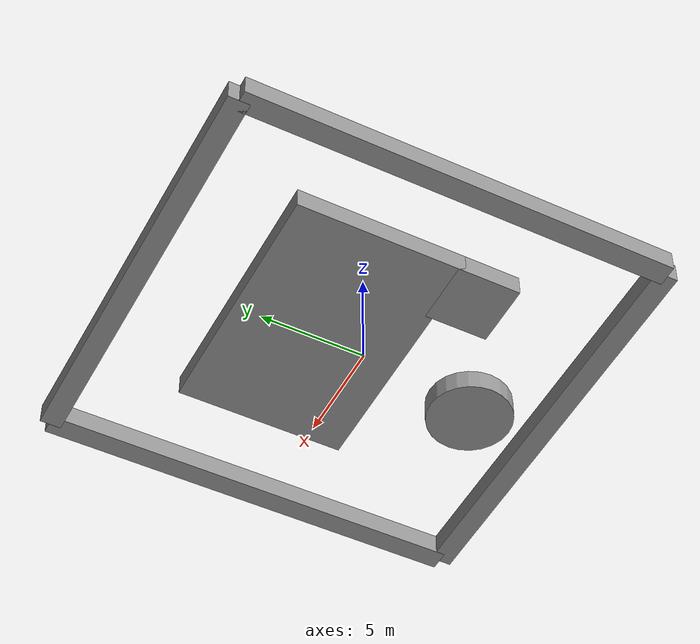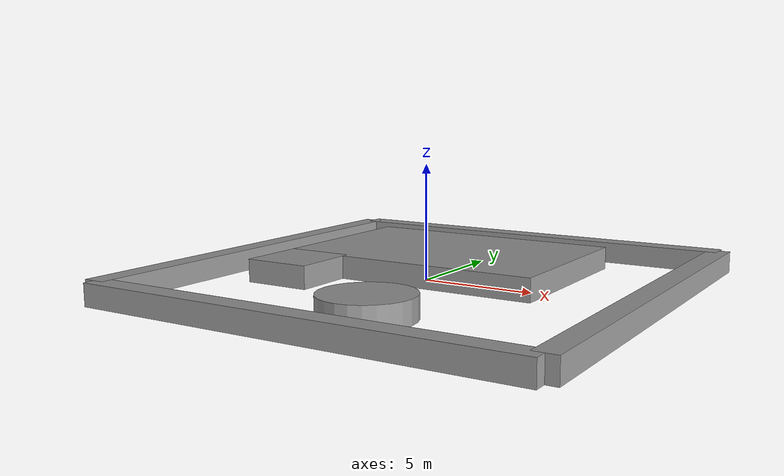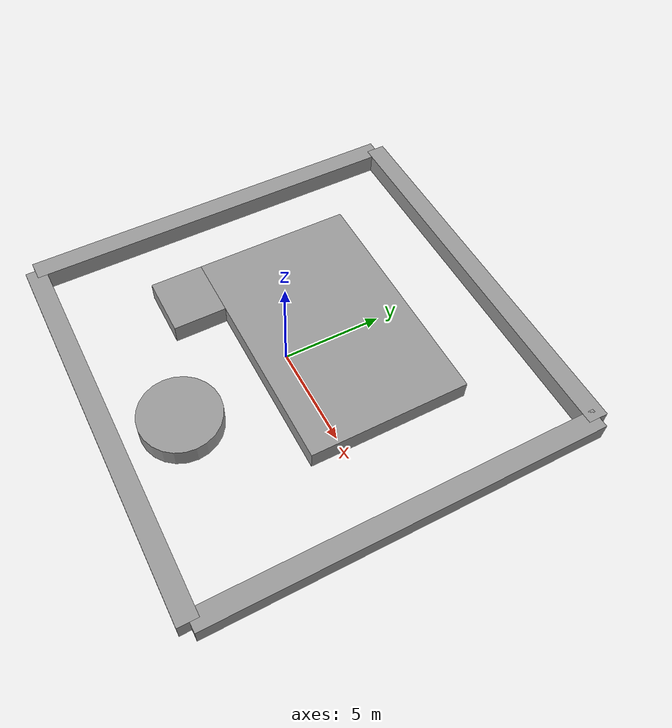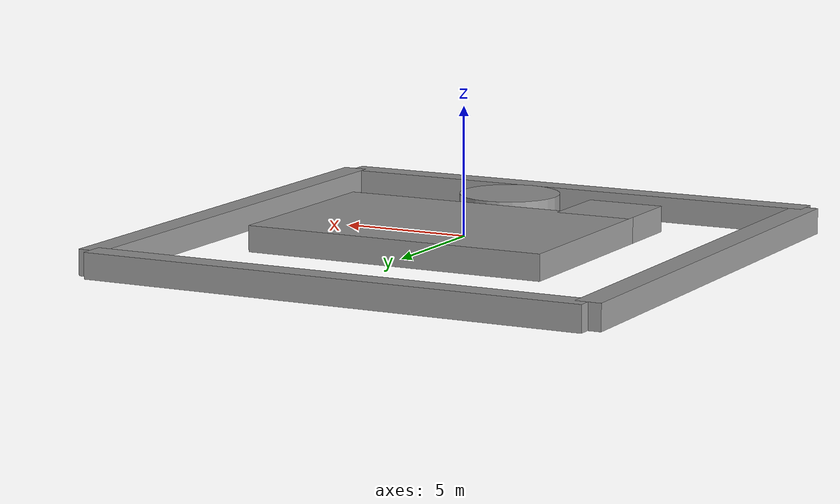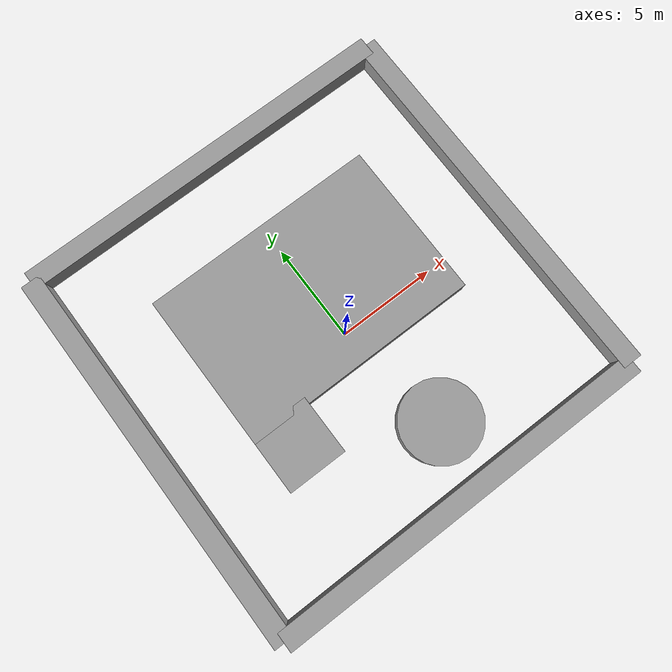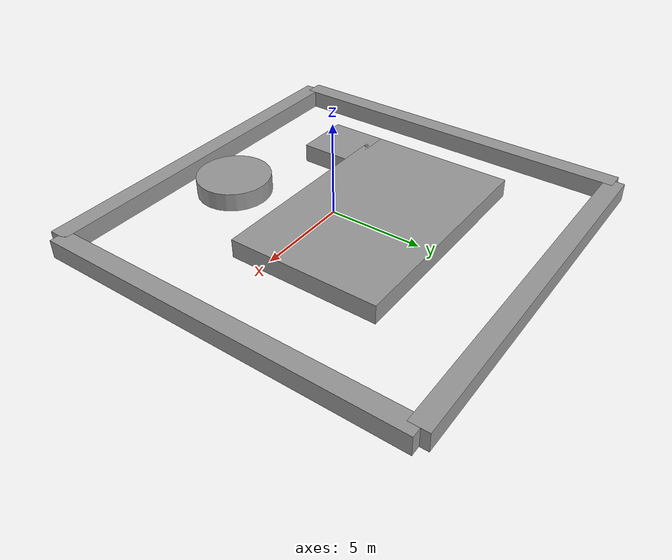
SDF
<?xml version='1.0'?>
<sdf version='1.7'>
  <model name='modelworld'>
    <link name='link_0'>
      <inertial>
        <mass>12.3713</mass>
        <inertia>
          <ixx>2.06188</ixx>
          <ixy>0</ixy>
          <ixz>0</ixz>
          <iyy>158.815</iyy>
          <iyz>0</iyz>
          <izz>158.815</izz>
        </inertia>
        <pose>0 0 0 0 -0 0</pose>
      </inertial>
      <pose>-0.285714 10.8504 -0 0 -0 0</pose>
      <gravity>1</gravity>
      <self_collide>0</self_collide>
      <kinematic>0</kinematic>
      <enable_wind>0</enable_wind>
      <visual name='visual'>
        <pose>0 0 0 0 -0 0</pose>
        <geometry>
          <box>
            <size>20 1 1</size>
          </box>
        </geometry>
        <material>
          <lighting>1</lighting>
          <script>
            <uri>file://media/materials/scripts/gazebo.material</uri>
            <name>Gazebo/Grey</name>
          </script>
          <shader type='pixel'>
            <normal_map>__default__</normal_map>
          </shader>
          <ambient>0 0 0 1</ambient>
          <diffuse>0.7 0.7 0.7 1</diffuse>
          <specular>0.01 0.01 0.01 1</specular>
          <emissive>0 0 0 1</emissive>
        </material>
        <transparency>0</transparency>
        <cast_shadows>1</cast_shadows>
      </visual>
      <collision name='collision'>
        <laser_retro>0</laser_retro>
        <max_contacts>10</max_contacts>
        <pose>0 0 0 0 -0 0</pose>
        <geometry>
          <box>
            <size>20 1 1</size>
          </box>
        </geometry>
        <surface>
          <friction>
            <ode>
              <mu>1</mu>
              <mu2>1</mu2>
              <fdir1>0 0 0</fdir1>
              <slip1>0</slip1>
              <slip2>0</slip2>
            </ode>
            <torsional>
              <coefficient>1</coefficient>
              <patch_radius>0</patch_radius>
              <surface_radius>0</surface_radius>
              <use_patch_radius>1</use_patch_radius>
              <ode>
                <slip>0</slip>
              </ode>
            </torsional>
          </friction>
          <bounce>
            <restitution_coefficient>0</restitution_coefficient>
            <threshold>1e+06</threshold>
          </bounce>
          <contact>
            <collide_without_contact>0</collide_without_contact>
            <collide_without_contact_bitmask>1</collide_without_contact_bitmask>
            <collide_bitmask>1</collide_bitmask>
            <ode>
              <soft_cfm>0</soft_cfm>
              <soft_erp>0.2</soft_erp>
              <kp>1e+13</kp>
              <kd>1</kd>
              <max_vel>0.01</max_vel>
              <min_depth>0</min_depth>
            </ode>
            <bullet>
              <split_impulse>1</split_impulse>
              <split_impulse_penetration_threshold>-0.01</split_impulse_penetration_threshold>
              <soft_cfm>0</soft_cfm>
              <soft_erp>0.2</soft_erp>
              <kp>1e+13</kp>
              <kd>1</kd>
            </bullet>
          </contact>
        </surface>
      </collision>
    </link>
    <link name='link_0_clone'>
      <inertial>
        <mass>12.3713</mass>
        <inertia>
          <ixx>2.06188</ixx>
          <ixy>0</ixy>
          <ixz>0</ixz>
          <iyy>413.407</iyy>
          <iyz>0</iyz>
          <izz>413.407</izz>
        </inertia>
        <pose>0 0 0 0 -0 0</pose>
      </inertial>
      <pose>-0.285714 -9.14967 -0 0 -0 0</pose>
      <gravity>1</gravity>
      <self_collide>0</self_collide>
      <kinematic>0</kinematic>
      <enable_wind>0</enable_wind>
      <visual name='visual'>
        <pose>0 0 0 0 -0 0</pose>
        <geometry>
          <box>
            <size>20 1 0.999999</size>
          </box>
        </geometry>
        <material>
          <lighting>1</lighting>
          <script>
            <uri>file://media/materials/scripts/gazebo.material</uri>
            <name>Gazebo/Grey</name>
          </script>
          <shader type='pixel'>
            <normal_map>__default__</normal_map>
          </shader>
          <ambient>0 0 0 1</ambient>
          <diffuse>0.7 0.7 0.7 1</diffuse>
          <specular>0.01 0.01 0.01 1</specular>
          <emissive>0 0 0 1</emissive>
        </material>
        <transparency>0</transparency>
        <cast_shadows>1</cast_shadows>
      </visual>
      <collision name='collision'>
        <laser_retro>0</laser_retro>
        <max_contacts>10</max_contacts>
        <pose>0 0 0 0 -0 0</pose>
        <geometry>
          <box>
            <size>20 1 0.999999</size>
          </box>
        </geometry>
        <surface>
          <friction>
            <ode>
              <mu>1</mu>
              <mu2>1</mu2>
              <fdir1>0 0 0</fdir1>
              <slip1>0</slip1>
              <slip2>0</slip2>
            </ode>
            <torsional>
              <coefficient>1</coefficient>
              <patch_radius>0</patch_radius>
              <surface_radius>0</surface_radius>
              <use_patch_radius>1</use_patch_radius>
              <ode>
                <slip>0</slip>
              </ode>
            </torsional>
          </friction>
          <bounce>
            <restitution_coefficient>0</restitution_coefficient>
            <threshold>1e+06</threshold>
          </bounce>
          <contact>
            <collide_without_contact>0</collide_without_contact>
            <collide_without_contact_bitmask>1</collide_without_contact_bitmask>
            <collide_bitmask>1</collide_bitmask>
            <ode>
              <soft_cfm>0</soft_cfm>
              <soft_erp>0.2</soft_erp>
              <kp>1e+13</kp>
              <kd>1</kd>
              <max_vel>0.01</max_vel>
              <min_depth>0</min_depth>
            </ode>
            <bullet>
              <split_impulse>1</split_impulse>
              <split_impulse_penetration_threshold>-0.01</split_impulse_penetration_threshold>
              <soft_cfm>0</soft_cfm>
              <soft_erp>0.2</soft_erp>
              <kp>1e+13</kp>
              <kd>1</kd>
            </bullet>
          </contact>
        </surface>
      </collision>
    </link>
    <link name='link_0_clone_0_clone'>
      <inertial>
        <mass>12.3713</mass>
        <inertia>
          <ixx>2.06188</ixx>
          <ixy>0</ixy>
          <ixz>0</ixz>
          <iyy>158.815</iyy>
          <iyz>0</iyz>
          <izz>158.815</izz>
        </inertia>
        <pose>0 0 0 0 -0 0</pose>
      </inertial>
      <pose>-10.2857 0.850334 -0 0 -0 0</pose>
      <gravity>1</gravity>
      <self_collide>0</self_collide>
      <kinematic>0</kinematic>
      <enable_wind>0</enable_wind>
      <visual name='visual'>
        <pose>0 0 0 0 -0 1.5707</pose>
        <geometry>
          <box>
            <size>20 1 1</size>
          </box>
        </geometry>
        <material>
          <lighting>1</lighting>
          <script>
            <uri>file://media/materials/scripts/gazebo.material</uri>
            <name>Gazebo/Grey</name>
          </script>
          <shader type='pixel'>
            <normal_map>__default__</normal_map>
          </shader>
          <ambient>0 0 0 1</ambient>
          <diffuse>0.7 0.7 0.7 1</diffuse>
          <specular>0.01 0.01 0.01 1</specular>
          <emissive>0 0 0 1</emissive>
        </material>
        <transparency>0</transparency>
        <cast_shadows>1</cast_shadows>
      </visual>
      <collision name='collision'>
        <laser_retro>0</laser_retro>
        <max_contacts>10</max_contacts>
        <pose>0 0 0 0 -0 1.5707</pose>
        <geometry>
          <box>
            <size>20 1 1</size>
          </box>
        </geometry>
        <surface>
          <friction>
            <ode>
              <mu>1</mu>
              <mu2>1</mu2>
              <fdir1>0 0 0</fdir1>
              <slip1>0</slip1>
              <slip2>0</slip2>
            </ode>
            <torsional>
              <coefficient>1</coefficient>
              <patch_radius>0</patch_radius>
              <surface_radius>0</surface_radius>
              <use_patch_radius>1</use_patch_radius>
              <ode>
                <slip>0</slip>
              </ode>
            </torsional>
          </friction>
          <bounce>
            <restitution_coefficient>0</restitution_coefficient>
            <threshold>1e+06</threshold>
          </bounce>
          <contact>
            <collide_without_contact>0</collide_without_contact>
            <collide_without_contact_bitmask>1</collide_without_contact_bitmask>
            <collide_bitmask>1</collide_bitmask>
            <ode>
              <soft_cfm>0</soft_cfm>
              <soft_erp>0.2</soft_erp>
              <kp>1e+13</kp>
              <kd>1</kd>
              <max_vel>0.01</max_vel>
              <min_depth>0</min_depth>
            </ode>
            <bullet>
              <split_impulse>1</split_impulse>
              <split_impulse_penetration_threshold>-0.01</split_impulse_penetration_threshold>
              <soft_cfm>0</soft_cfm>
              <soft_erp>0.2</soft_erp>
              <kp>1e+13</kp>
              <kd>1</kd>
            </bullet>
          </contact>
        </surface>
      </collision>
    </link>
    <link name='link_0_clone_0_clone_clone'>
      <inertial>
        <mass>12.3713</mass>
        <inertia>
          <ixx>2.06188</ixx>
          <ixy>0</ixy>
          <ixz>0</ixz>
          <iyy>158.815</iyy>
          <iyz>0</iyz>
          <izz>158.815</izz>
        </inertia>
        <pose>0 0 0 0 -0 0</pose>
      </inertial>
      <pose>9.71429 0.916349 -0 0 -0 0</pose>
      <gravity>1</gravity>
      <self_collide>0</self_collide>
      <kinematic>0</kinematic>
      <enable_wind>0</enable_wind>
      <visual name='visual'>
        <pose>0 0 0 0 -0 1.5707</pose>
        <geometry>
          <box>
            <size>20 1 1</size>
          </box>
        </geometry>
        <material>
          <lighting>1</lighting>
          <script>
            <uri>file://media/materials/scripts/gazebo.material</uri>
            <name>Gazebo/Grey</name>
          </script>
          <shader type='pixel'>
            <normal_map>__default__</normal_map>
          </shader>
          <ambient>0 0 0 1</ambient>
          <diffuse>0.7 0.7 0.7 1</diffuse>
          <specular>0.01 0.01 0.01 1</specular>
          <emissive>0 0 0 1</emissive>
        </material>
        <transparency>0</transparency>
        <cast_shadows>1</cast_shadows>
      </visual>
      <collision name='collision'>
        <laser_retro>0</laser_retro>
        <max_contacts>10</max_contacts>
        <pose>0 0 0 0 -0 1.5707</pose>
        <geometry>
          <box>
            <size>20 1 1</size>
          </box>
        </geometry>
        <surface>
          <friction>
            <ode>
              <mu>1</mu>
              <mu2>1</mu2>
              <fdir1>0 0 0</fdir1>
              <slip1>0</slip1>
              <slip2>0</slip2>
            </ode>
            <torsional>
              <coefficient>1</coefficient>
              <patch_radius>0</patch_radius>
              <surface_radius>0</surface_radius>
              <use_patch_radius>1</use_patch_radius>
              <ode>
                <slip>0</slip>
              </ode>
            </torsional>
          </friction>
          <bounce>
            <restitution_coefficient>0</restitution_coefficient>
            <threshold>1e+06</threshold>
          </bounce>
          <contact>
            <collide_without_contact>0</collide_without_contact>
            <collide_without_contact_bitmask>1</collide_without_contact_bitmask>
            <collide_bitmask>1</collide_bitmask>
            <ode>
              <soft_cfm>0</soft_cfm>
              <soft_erp>0.2</soft_erp>
              <kp>1e+13</kp>
              <kd>1</kd>
              <max_vel>0.01</max_vel>
              <min_depth>0</min_depth>
            </ode>
            <bullet>
              <split_impulse>1</split_impulse>
              <split_impulse_penetration_threshold>-0.01</split_impulse_penetration_threshold>
              <soft_cfm>0</soft_cfm>
              <soft_erp>0.2</soft_erp>
              <kp>1e+13</kp>
              <kd>1</kd>
            </bullet>
          </contact>
        </surface>
      </collision>
    </link>
    <link name='link_1'>
      <inertial>
        <mass>111.165</mass>
        <inertia>
          <ixx>704.926</ixx>
          <ixy>0</ixy>
          <ixz>0</ixz>
          <iyy>1533.72</iyy>
          <iyz>0</iyz>
          <izz>2220.12</izz>
        </inertia>
        <pose>0 0 0 0 -0 0</pose>
      </inertial>
      <pose>-0.285714 2.35033 0.5 0 -0 0</pose>
      <gravity>1</gravity>
      <self_collide>0</self_collide>
      <kinematic>0</kinematic>
      <enable_wind>0</enable_wind>
      <visual name='visual'>
        <pose>0 0 0 0 -0 0</pose>
        <geometry>
          <box>
            <size>12 8 1</size>
          </box>
        </geometry>
        <material>
          <lighting>1</lighting>
          <script>
            <uri>file://media/materials/scripts/gazebo.material</uri>
            <name>Gazebo/Grey</name>
          </script>
          <shader type='pixel'>
            <normal_map>__default__</normal_map>
          </shader>
          <ambient>0 0 0 1</ambient>
          <diffuse>0.7 0.7 0.7 1</diffuse>
          <specular>0.01 0.01 0.01 1</specular>
          <emissive>0 0 0 1</emissive>
        </material>
        <transparency>0</transparency>
        <cast_shadows>1</cast_shadows>
      </visual>
      <collision name='collision'>
        <laser_retro>0</laser_retro>
        <max_contacts>10</max_contacts>
        <pose>0 0 0 0 -0 0</pose>
        <geometry>
          <box>
            <size>12 8 1</size>
          </box>
        </geometry>
        <surface>
          <friction>
            <ode>
              <mu>1</mu>
              <mu2>1</mu2>
              <fdir1>0 0 0</fdir1>
              <slip1>0</slip1>
              <slip2>0</slip2>
            </ode>
            <torsional>
              <coefficient>1</coefficient>
              <patch_radius>0</patch_radius>
              <surface_radius>0</surface_radius>
              <use_patch_radius>1</use_patch_radius>
              <ode>
                <slip>0</slip>
              </ode>
            </torsional>
          </friction>
          <bounce>
            <restitution_coefficient>0</restitution_coefficient>
            <threshold>1e+06</threshold>
          </bounce>
          <contact>
            <collide_without_contact>0</collide_without_contact>
            <collide_without_contact_bitmask>1</collide_without_contact_bitmask>
            <collide_bitmask>1</collide_bitmask>
            <ode>
              <soft_cfm>0</soft_cfm>
              <soft_erp>0.2</soft_erp>
              <kp>1e+13</kp>
              <kd>1</kd>
              <max_vel>0.01</max_vel>
              <min_depth>0</min_depth>
            </ode>
            <bullet>
              <split_impulse>1</split_impulse>
              <split_impulse_penetration_threshold>-0.01</split_impulse_penetration_threshold>
              <soft_cfm>0</soft_cfm>
              <soft_erp>0.2</soft_erp>
              <kp>1e+13</kp>
              <kd>1</kd>
            </bullet>
          </contact>
        </surface>
      </collision>
    </link>
    <link name='link_2'>
      <inertial>
        <mass>9.27476</mass>
        <inertia>
          <ixx>7.76855</ixx>
          <ixy>0</ixy>
          <ixz>0</ixz>
          <iyy>8.11872</iyy>
          <iyz>0</iyz>
          <izz>14.3415</izz>
        </inertia>
        <pose>0 0 0 0 -0 0</pose>
      </inertial>
      <pose>-4.78571 -2.80203 0.5 0 -0 0</pose>
      <gravity>1</gravity>
      <self_collide>0</self_collide>
      <kinematic>0</kinematic>
      <enable_wind>0</enable_wind>
      <visual name='visual'>
        <pose>0 0 0 0 -0 0</pose>
        <geometry>
          <box>
            <size>3 3 1</size>
          </box>
        </geometry>
        <material>
          <lighting>1</lighting>
          <script>
            <uri>file://media/materials/scripts/gazebo.material</uri>
            <name>Gazebo/Grey</name>
          </script>
          <shader type='pixel'>
            <normal_map>__default__</normal_map>
          </shader>
          <ambient>0 0 0 1</ambient>
          <diffuse>0.7 0.7 0.7 1</diffuse>
          <specular>0.01 0.01 0.01 1</specular>
          <emissive>0 0 0 1</emissive>
        </material>
        <transparency>0</transparency>
        <cast_shadows>1</cast_shadows>
      </visual>
      <collision name='collision'>
        <laser_retro>0</laser_retro>
        <max_contacts>10</max_contacts>
        <pose>0 0 0 0 -0 0</pose>
        <geometry>
          <box>
            <size>3 3 1</size>
          </box>
        </geometry>
        <surface>
          <friction>
            <ode>
              <mu>1</mu>
              <mu2>1</mu2>
              <fdir1>0 0 0</fdir1>
              <slip1>0</slip1>
              <slip2>0</slip2>
            </ode>
            <torsional>
              <coefficient>1</coefficient>
              <patch_radius>0</patch_radius>
              <surface_radius>0</surface_radius>
              <use_patch_radius>1</use_patch_radius>
              <ode>
                <slip>0</slip>
              </ode>
            </torsional>
          </friction>
          <bounce>
            <restitution_coefficient>0</restitution_coefficient>
            <threshold>1e+06</threshold>
          </bounce>
          <contact>
            <collide_without_contact>0</collide_without_contact>
            <collide_without_contact_bitmask>1</collide_without_contact_bitmask>
            <collide_bitmask>1</collide_bitmask>
            <ode>
              <soft_cfm>0</soft_cfm>
              <soft_erp>0.2</soft_erp>
              <kp>1e+13</kp>
              <kd>1</kd>
              <max_vel>0.01</max_vel>
              <min_depth>0</min_depth>
            </ode>
            <bullet>
              <split_impulse>1</split_impulse>
              <split_impulse_penetration_threshold>-0.01</split_impulse_penetration_threshold>
              <soft_cfm>0</soft_cfm>
              <soft_erp>0.2</soft_erp>
              <kp>1e+13</kp>
              <kd>1</kd>
            </bullet>
          </contact>
        </surface>
      </collision>
    </link>
    <link name='link_3'>
      <inertial>
        <mass>14.2298</mass>
        <inertia>
          <ixx>13.8414</ixx>
          <ixy>0</ixy>
          <ixz>0</ixz>
          <iyy>13.8414</iyy>
          <iyz>0</iyz>
          <izz>25.3111</izz>
        </inertia>
        <pose>0 0 0 0 -0 0</pose>
      </inertial>
      <pose>0.964286 -5.85533 0.166667 0 -0 0</pose>
      <gravity>1</gravity>
      <self_collide>0</self_collide>
      <kinematic>0</kinematic>
      <enable_wind>0</enable_wind>
      <visual name='visual'>
        <pose>0 0 0 0 -0 0</pose>
        <geometry>
          <cylinder>
            <radius>2</radius>
            <length>1</length>
          </cylinder>
        </geometry>
        <material>
          <lighting>1</lighting>
          <script>
            <uri>file://media/materials/scripts/gazebo.material</uri>
            <name>Gazebo/Grey</name>
          </script>
          <shader type='pixel'>
            <normal_map>__default__</normal_map>
          </shader>
          <ambient>0 0 0 1</ambient>
          <diffuse>0.7 0.7 0.7 1</diffuse>
          <specular>0.01 0.01 0.01 1</specular>
          <emissive>0 0 0 1</emissive>
        </material>
        <transparency>0</transparency>
        <cast_shadows>1</cast_shadows>
      </visual>
      <collision name='collision_1'>
        <laser_retro>0</laser_retro>
        <max_contacts>10</max_contacts>
        <pose>0 0 0 0 -0 0</pose>
        <geometry>
          <cylinder>
            <radius>2</radius>
            <length>1</length>
          </cylinder>
        </geometry>
        <surface>
          <friction>
            <ode>
              <mu>1</mu>
              <mu2>1</mu2>
              <fdir1>0 0 0</fdir1>
              <slip1>0</slip1>
              <slip2>0</slip2>
            </ode>
            <torsional>
              <coefficient>1</coefficient>
              <patch_radius>0</patch_radius>
              <surface_radius>0</surface_radius>
              <use_patch_radius>1</use_patch_radius>
              <ode>
                <slip>0</slip>
              </ode>
            </torsional>
          </friction>
          <bounce>
            <restitution_coefficient>0</restitution_coefficient>
            <threshold>1e+06</threshold>
          </bounce>
          <contact>
            <collide_without_contact>0</collide_without_contact>
            <collide_without_contact_bitmask>1</collide_without_contact_bitmask>
            <collide_bitmask>1</collide_bitmask>
            <ode>
              <soft_cfm>0</soft_cfm>
              <soft_erp>0.2</soft_erp>
              <kp>1e+13</kp>
              <kd>1</kd>
              <max_vel>0.01</max_vel>
              <min_depth>0</min_depth>
            </ode>
            <bullet>
              <split_impulse>1</split_impulse>
              <split_impulse_penetration_threshold>-0.01</split_impulse_penetration_threshold>
              <soft_cfm>0</soft_cfm>
              <soft_erp>0.2</soft_erp>
              <kp>1e+13</kp>
              <kd>1</kd>
            </bullet>
          </contact>
        </surface>
      </collision>
    </link>
    <static>0</static>
    <allow_auto_disable>1</allow_auto_disable>
  </model>
</sdf>
